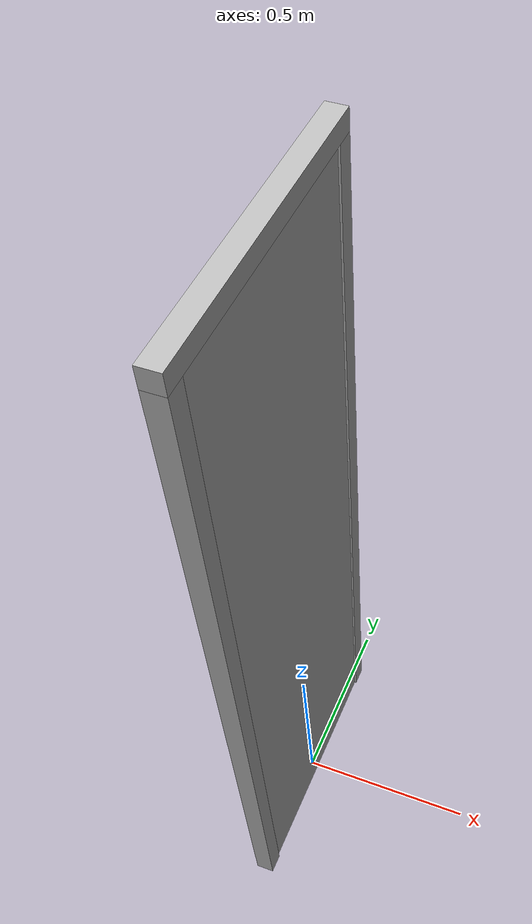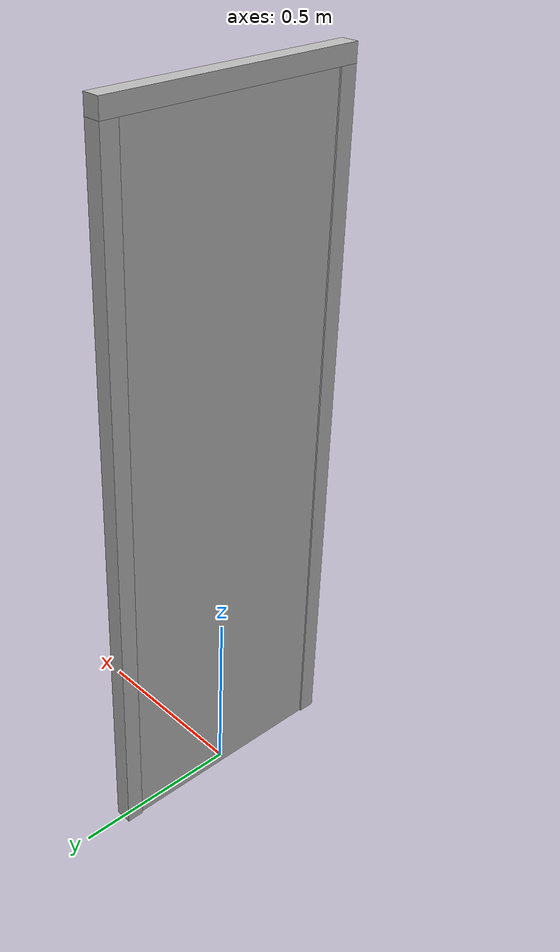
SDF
<?xml version="1.0" ?>
<sdf version="1.6">
  <model name="pcg_door_RHR_from_primitives_with_frame">
    <allow_auto_disable>0</allow_auto_disable>
    <pose frame="">0 0 1 0 -0 0</pose>
    <self_collide>0</self_collide>
    <joint name="hinge" type="revolute">
      <pose frame="">0 -0.325 0 0 -0 0</pose>
      <axis>
        <xyz>0 0 1</xyz>
        <limit>
          <upper>1.57079632679</upper>
          <lower>0.0</lower>
          <effort>-1.0</effort>
          <velocity>-1.0</velocity>
        </limit>
        <dynamics>
          <spring_reference>0.0</spring_reference>
          <spring_stiffness>0.0</spring_stiffness>
          <friction>0.0</friction>
          <damping>0.0</damping>
        </dynamics>
        <use_parent_model_frame>0</use_parent_model_frame>
      </axis>
      <parent>world</parent>
      <child>door</child>
    </joint>
    <joint name="frame_to_world" type="revolute">
      <pose frame="">0 0 0 0 -0 0</pose>
      <axis>
        <xyz>0 0 1</xyz>
        <limit>
          <upper>0.0</upper>
          <lower>0.0</lower>
          <effort>-1.0</effort>
          <velocity>-1.0</velocity>
        </limit>
        <dynamics>
          <spring_reference>0.0</spring_reference>
          <spring_stiffness>0.0</spring_stiffness>
          <friction>0.0</friction>
          <damping>0.0</damping>
        </dynamics>
        <use_parent_model_frame>0</use_parent_model_frame>
      </axis>
      <parent>world</parent>
      <child>frame</child>
    </joint>
    <static>0</static>
    <link name="frame">
      <collision name="left_frame_collision">
        <geometry>
          <box>
            <size>0.05 0.05 2</size>
          </box>
        </geometry>
        <max_contacts>20</max_contacts>
        <pose frame="">0 -0.35 0 0 -0 0</pose>
      </collision>
      <collision name="right_frame_collision">
        <geometry>
          <box>
            <size>0.05 0.05 2</size>
          </box>
        </geometry>
        <max_contacts>20</max_contacts>
        <pose frame="">0 0.35 0 0 -0 0</pose>
      </collision>
      <collision name="top_frame_collision">
        <geometry>
          <box>
            <size>0.05 0.75 0.05</size>
          </box>
        </geometry>
        <max_contacts>20</max_contacts>
        <pose frame="">0 0 1.025 0 -0 0</pose>
      </collision>
      <visual name="left_frame_visual">
        <geometry>
          <box>
            <size>0.05 0.05 2</size>
          </box>
        </geometry>
        <pose frame="">0 -0.35 0 0 -0 0</pose>
        <cast_shadows>1</cast_shadows>
        <transparency>0.0</transparency>
      </visual>
      <visual name="right_frame_visual">
        <geometry>
          <box>
            <size>0.05 0.05 2</size>
          </box>
        </geometry>
        <pose frame="">0 0.35 0 0 -0 0</pose>
        <cast_shadows>1</cast_shadows>
        <transparency>0.0</transparency>
      </visual>
      <visual name="top_frame_visual">
        <geometry>
          <box>
            <size>0.05 0.75 0.05</size>
          </box>
        </geometry>
        <pose frame="">0 0 1.025 0 -0 0</pose>
        <cast_shadows>1</cast_shadows>
        <transparency>0.0</transparency>
      </visual>
      <pose frame="">0 0 0 0 -0 0</pose>
    </link>
    <link name="door">
      <collision name="collision">
        <geometry>
          <box>
            <size>0.04 0.65 2</size>
          </box>
        </geometry>
        <max_contacts>20</max_contacts>
        <pose frame="">0 0 0 0 -0 0</pose>
      </collision>
      <visual name="visual">
        <geometry>
          <box>
            <size>0.04 0.65 2</size>
          </box>
        </geometry>
        <pose frame="">0 0 0 0 -0 0</pose>
        <cast_shadows>1</cast_shadows>
        <transparency>0.0</transparency>
      </visual>
      <pose frame="">0 0 0 0 -0 0</pose>
      <inertial>
        <pose frame="">0 0 0 0 -0 0</pose>
        <mass>10.0</mass>
        <inertia>
          <ixz>0.0</ixz>
          <ixx>3.68541666667</ixx>
          <ixy>0.0</ixy>
          <izz>0.353416666667</izz>
          <iyy>3.33466666667</iyy>
          <iyz>0.0</iyz>
        </inertia>
      </inertial>
    </link>
  </model>
</sdf>
